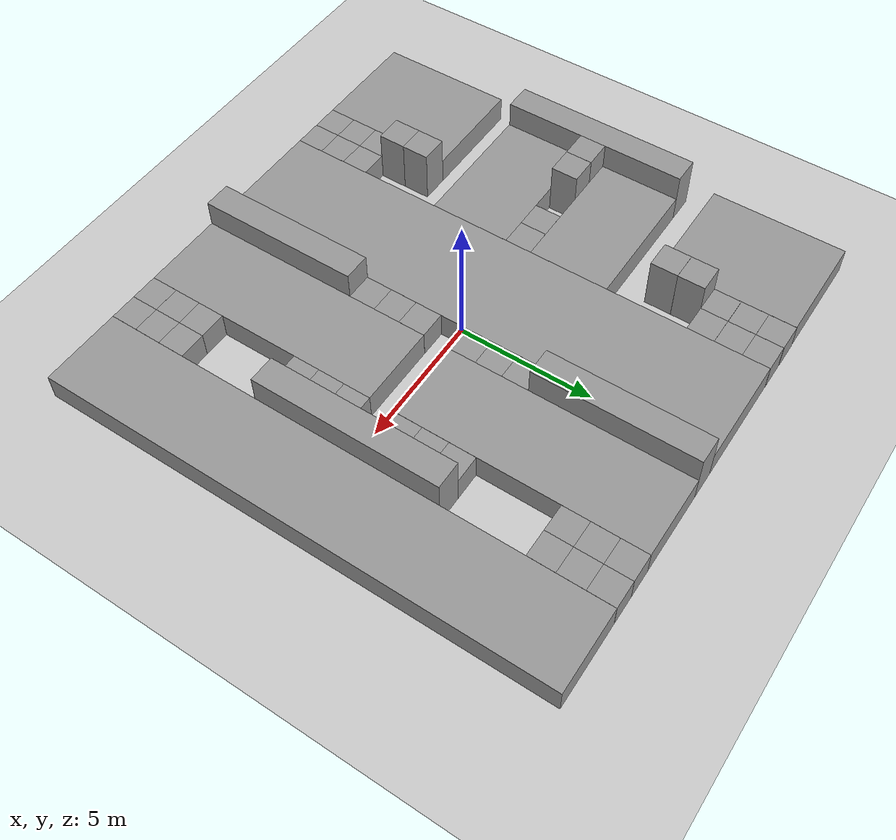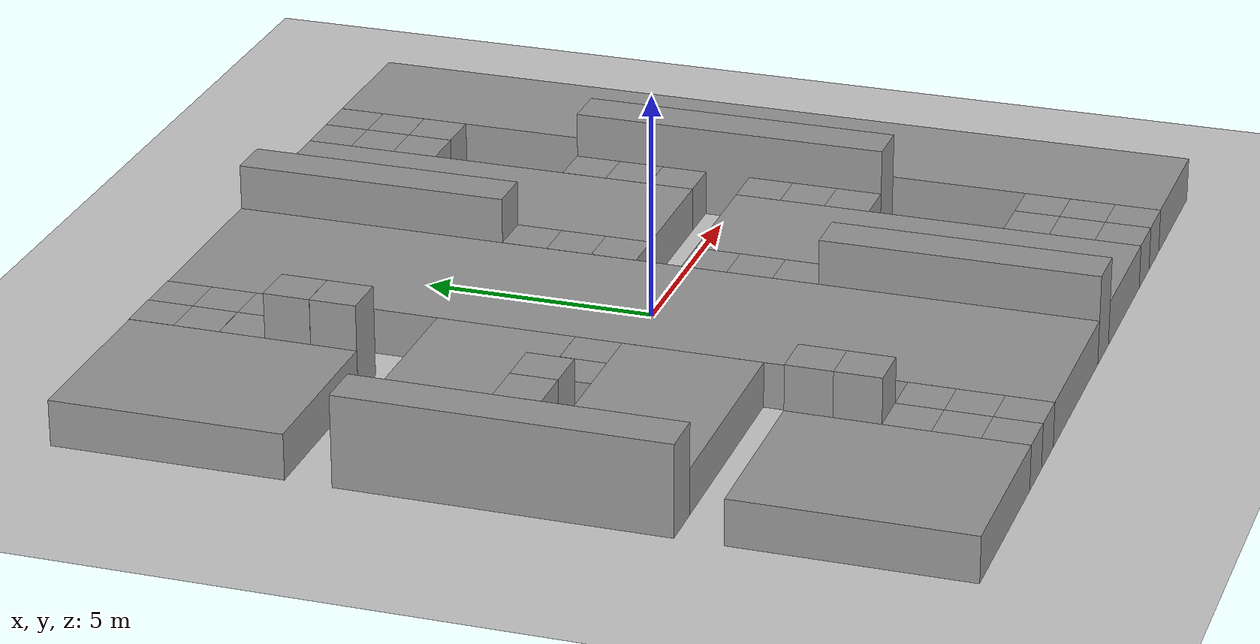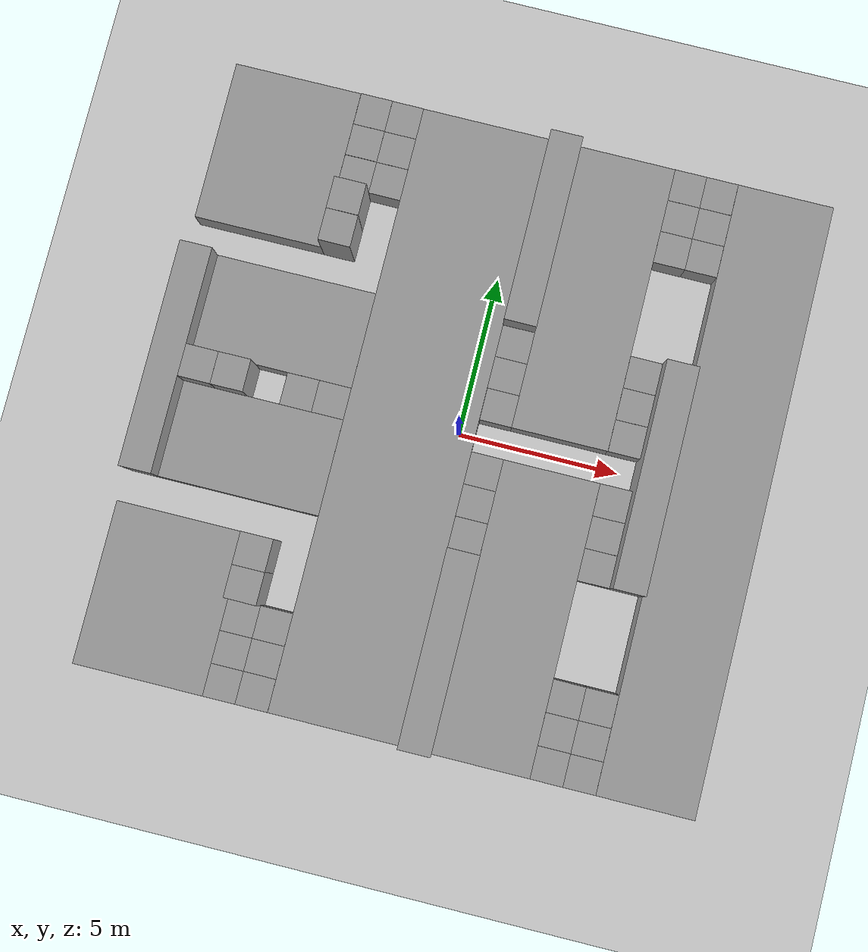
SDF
<sdf version="1.4">
 <world name="default">
  <light name="sun" type="directional">
   <pose>0 0 30 0 -0 0</pose>
   <diffuse>0.8 0.8 0.8 1</diffuse>
   <specular>0.2 0.2 0.2 1</specular>
   <attenuation>
    <range>1000</range>
    <constant>0.9</constant>
    <linear>0.01</linear>
    <quadratic>0.001</quadratic>
   </attenuation>
   <direction>-0.5 0.1 -0.9</direction>
  </light>
  <model name="ground_plane">
   <static>1</static>
   <link name="link">
    <collision name="collision">
     <geometry><plane><normal>0 0 1</normal><size>100 100</size></plane></geometry>
     <surface><friction><ode><mu>100</mu><mu2>50</mu2></ode></friction></surface>
    </collision>
    <visual name="visual">
     <cast_shadows>0</cast_shadows>
     <geometry><plane><normal>0 0 1</normal><size>100 100</size></plane></geometry>
     <material>
      <script><uri>file://media/materials/scripts/gazebo.material</uri><name>Gazebo/Grey</name></script>
     </material>
    </visual>
    <velocity_decay><linear>0</linear><angular>0</angular></velocity_decay>
   </link>
  </model>
  <physics type="ode">
   <max_step_size>0.001</max_step_size>
   <real_time_factor>1</real_time_factor>
   <real_time_update_rate>1000</real_time_update_rate>
   <gravity>0 0 -9.8</gravity>
  </physics>
  <scene><ambient>0.4 0.4 0.4 1</ambient><background>0.7 0.7 0.7 1</background><shadows>1</shadows></scene>
  <spherical_coordinates>
   <surface_model>EARTH_WGS84</surface_model>
   <latitude_deg>0</latitude_deg>
   <longitude_deg>0</longitude_deg>
   <elevation>0</elevation>
   <heading_deg>0</heading_deg>
  </spherical_coordinates>
  <model name="unit_box_7">
   <pose>6.00106 -0.000185 1 0 0 -8.2e-05</pose>
   <link name="link">
    <inertial>
     <mass>0</mass>
     <inertia><ixx>0</ixx><ixy>0</ixy><ixz>0</ixz><iyy>0</iyy><iyz>0</iyz><izz>0</izz></inertia>
    </inertial>
    <collision name="collision"><geometry><box><size>1 7 2</size></box></geometry></collision>
    <visual name="visual">
     <geometry><box><size>1 7 2</size></box></geometry>
     <material>
      <script><uri>file://media/materials/scripts/gazebo.material</uri><name>Gazebo/Grey</name></script>
     </material>
    </visual>
    <velocity_decay><linear>0</linear><angular>0</angular></velocity_decay>
   </link>
   <static>1</static>
  </model>
  <model name="unit_box_9">
   <pose>8.00208 0.000273 0.5 0 0 -9.8e-05</pose>
   <link name="link">
    <inertial>
     <mass>0</mass>
     <inertia><ixx>0</ixx><ixy>0</ixy><ixz>0</ixz><iyy>0</iyy><iyz>0</iyz><izz>0</izz></inertia>
    </inertial>
    <collision name="collision"><geometry><box><size>3 19 1</size></box></geometry></collision>
    <visual name="visual">
     <geometry><box><size>3 19 1</size></box></geometry>
     <material>
      <script><uri>file://media/materials/scripts/gazebo.material</uri><name>Gazebo/Grey</name></script>
     </material>
    </visual>
    <velocity_decay><linear>0</linear><angular>0</angular></velocity_decay>
   </link>
   <static>1</static>
  </model>
  <model name="unit_box_12">
   <pose>-1.5 -1e-05 0.500001 -5.16988e-26 -2e-06 8.5e-05</pose>
   <link name="link">
    <inertial>
     <mass>0</mass>
     <inertia><ixx>0</ixx><ixy>0</ixy><ixz>0</ixz><iyy>0</iyy><iyz>0</iyz><izz>0</izz></inertia>
    </inertial>
    <collision name="collision"><geometry><box><size>4 19 1</size></box></geometry></collision>
    <visual name="visual">
     <geometry><box><size>4 19 1</size></box></geometry>
     <material>
      <script><uri>file://media/materials/scripts/gazebo.material</uri><name>Gazebo/Grey</name></script>
     </material>
    </visual>
    <velocity_decay><linear>0</linear><angular>0</angular></velocity_decay>
   </link>
   <static>1</static>
  </model>
  <model name="unit_box_15">
   <pose>-5.00042 -0.000441 0.5 0 -0 0.000129</pose>
   <link name="link">
    <inertial>
     <mass>0</mass>
     <inertia><ixx>0</ixx><ixy>0</ixy><ixz>0</ixz><iyy>0</iyy><iyz>0</iyz><izz>0</izz></inertia>
    </inertial>
    <collision name="collision"><geometry><box><size>1 1 1</size></box></geometry></collision>
    <visual name="visual">
     <geometry><box><size>1 1 1</size></box></geometry>
     <material>
      <script><uri>file://media/materials/scripts/gazebo.material</uri><name>Gazebo/Grey</name></script>
     </material>
    </visual>
    <velocity_decay><linear>0</linear><angular>0</angular></velocity_decay>
   </link>
   <static>1</static>
  </model>
  <model name="unit_box_17">
   <pose>-7.00529 -0.000662 1 0 -0 9e-05</pose>
   <link name="link">
    <inertial>
     <mass>0</mass>
     <inertia><ixx>0</ixx><ixy>0</ixy><ixz>0</ixz><iyy>0</iyy><iyz>0</iyz><izz>0</izz></inertia>
    </inertial>
    <collision name="collision"><geometry><box><size>1 1 2</size></box></geometry></collision>
    <visual name="visual">
     <geometry><box><size>1 1 2</size></box></geometry>
     <material>
      <script><uri>file://media/materials/scripts/gazebo.material</uri><name>Gazebo/Grey</name></script>
     </material>
    </visual>
    <velocity_decay><linear>0</linear><angular>0</angular></velocity_decay>
   </link>
   <static>1</static>
  </model>
  <model name="unit_box_18">
   <pose>-8.00606 -0.000851 1 0 -0 3.8e-05</pose>
   <link name="link">
    <inertial>
     <mass>0</mass>
     <inertia><ixx>0</ixx><ixy>0</ixy><ixz>0</ixz><iyy>0</iyy><iyz>0</iyz><izz>0</izz></inertia>
    </inertial>
    <collision name="collision"><geometry><box><size>1 1 2</size></box></geometry></collision>
    <visual name="visual">
     <geometry><box><size>1 1 2</size></box></geometry>
     <material>
      <script><uri>file://media/materials/scripts/gazebo.material</uri><name>Gazebo/Grey</name></script>
     </material>
    </visual>
    <velocity_decay><linear>0</linear><angular>0</angular></velocity_decay>
   </link>
   <static>1</static>
  </model>
  <model name="unit_box_19">
   <pose>-9.00622 -0.002069 1 0 0 -5.3e-05</pose>
   <link name="link">
    <inertial>
     <mass>0</mass>
     <inertia><ixx>0</ixx><ixy>0</ixy><ixz>0</ixz><iyy>0</iyy><iyz>0</iyz><izz>0</izz></inertia>
    </inertial>
    <collision name="collision"><geometry><box><size>1 7 2</size></box></geometry></collision>
    <visual name="visual">
     <geometry><box><size>1 7 2</size></box></geometry>
     <material>
      <script><uri>file://media/materials/scripts/gazebo.material</uri><name>Gazebo/Grey</name></script>
     </material>
    </visual>
    <velocity_decay><linear>0</linear><angular>0</angular></velocity_decay>
   </link>
   <static>1</static>
  </model>
  <model name="unit_box_42">
   <pose>5.00005 -9.00028 0.500001 -1e-06 -0 -1.5e-05</pose>
   <link name="link">
    <inertial>
     <mass>0</mass>
     <inertia><ixx>0</ixx><ixy>0</ixy><ixz>0</ixz><iyy>0</iyy><iyz>0</iyz><izz>0</izz></inertia>
    </inertial>
    <collision name="collision"><geometry><box><size>1 1 1</size></box></geometry></collision>
    <visual name="visual">
     <geometry><box><size>1 1 1</size></box></geometry>
     <material>
      <script><uri>file://media/materials/scripts/gazebo.material</uri><name>Gazebo/Grey</name></script>
     </material>
    </visual>
    <velocity_decay><linear>0</linear><angular>0</angular></velocity_decay>
   </link>
   <static>1</static>
  </model>
  <model name="unit_box_43">
   <pose>6.00005 -9.00024 0.5 0 0 -1.5e-05</pose>
   <link name="link">
    <inertial>
     <mass>0</mass>
     <inertia><ixx>0</ixx><ixy>0</ixy><ixz>0</ixz><iyy>0</iyy><iyz>0</iyz><izz>0</izz></inertia>
    </inertial>
    <collision name="collision"><geometry><box><size>1 1 1</size></box></geometry></collision>
    <visual name="visual">
     <geometry><box><size>1 1 1</size></box></geometry>
     <material>
      <script><uri>file://media/materials/scripts/gazebo.material</uri><name>Gazebo/Grey</name></script>
     </material>
    </visual>
    <velocity_decay><linear>0</linear><angular>0</angular></velocity_decay>
   </link>
   <static>1</static>
  </model>
  <model name="unit_box_58">
   <pose>-3.99937 9.00633 0.5 0 0 -0.001119</pose>
   <link name="link">
    <inertial>
     <mass>0</mass>
     <inertia><ixx>0</ixx><ixy>0</ixy><ixz>0</ixz><iyy>0</iyy><iyz>0</iyz><izz>0</izz></inertia>
    </inertial>
    <collision name="collision"><geometry><box><size>1 1 1</size></box></geometry></collision>
    <visual name="visual">
     <geometry><box><size>1 1 1</size></box></geometry>
     <material>
      <script><uri>file://media/materials/scripts/gazebo.material</uri><name>Gazebo/Grey</name></script>
     </material>
    </visual>
    <velocity_decay><linear>0</linear><angular>0</angular></velocity_decay>
   </link>
   <static>1</static>
  </model>
  <model name="unit_box_59">
   <pose>-4.99984 9.01408 0.5 0 0 -0.001025</pose>
   <link name="link">
    <inertial>
     <mass>0</mass>
     <inertia><ixx>0</ixx><ixy>0</ixy><ixz>0</ixz><iyy>0</iyy><iyz>0</iyz><izz>0</izz></inertia>
    </inertial>
    <collision name="collision"><geometry><box><size>1 1 1</size></box></geometry></collision>
    <visual name="visual">
     <geometry><box><size>1 1 1</size></box></geometry>
     <material>
      <script><uri>file://media/materials/scripts/gazebo.material</uri><name>Gazebo/Grey</name></script>
     </material>
    </visual>
    <velocity_decay><linear>0</linear><angular>0</angular></velocity_decay>
   </link>
   <static>1</static>
  </model>
  <model name="unit_box_83">
   <pose>6.00121 9.00111 0.5 0 0 -0.00015</pose>
   <link name="link">
    <inertial>
     <mass>0</mass>
     <inertia><ixx>0</ixx><ixy>0</ixy><ixz>0</ixz><iyy>0</iyy><iyz>0</iyz><izz>0</izz></inertia>
    </inertial>
    <collision name="collision"><geometry><box><size>1 1 1</size></box></geometry></collision>
    <visual name="visual">
     <geometry><box><size>1 1 1</size></box></geometry>
     <material>
      <script><uri>file://media/materials/scripts/gazebo.material</uri><name>Gazebo/Grey</name></script>
     </material>
    </visual>
    <velocity_decay><linear>0</linear><angular>0</angular></velocity_decay>
   </link>
   <static>1</static>
  </model>
  <model name="unit_box_84">
   <pose>5.00121 9.00167 0.5 0 0 -0.000139</pose>
   <link name="link">
    <inertial>
     <mass>0</mass>
     <inertia><ixx>0</ixx><ixy>0</ixy><ixz>0</ixz><iyy>0</iyy><iyz>0</iyz><izz>0</izz></inertia>
    </inertial>
    <collision name="collision"><geometry><box><size>1 1 1</size></box></geometry></collision>
    <visual name="visual">
     <geometry><box><size>1 1 1</size></box></geometry>
     <material>
      <script><uri>file://media/materials/scripts/gazebo.material</uri><name>Gazebo/Grey</name></script>
     </material>
    </visual>
    <velocity_decay><linear>0</linear><angular>0</angular></velocity_decay>
   </link>
   <static>1</static>
  </model>
  <model name="unit_box_100">
   <pose>-4.00005 -9.00042 0.5 0 -0 1.2e-05</pose>
   <link name="link">
    <inertial>
     <mass>0</mass>
     <inertia><ixx>0</ixx><ixy>0</ixy><ixz>0</ixz><iyy>0</iyy><iyz>0</iyz><izz>0</izz></inertia>
    </inertial>
    <collision name="collision"><geometry><box><size>1 1 1</size></box></geometry></collision>
    <visual name="visual">
     <geometry><box><size>1 1 1</size></box></geometry>
     <material>
      <script><uri>file://media/materials/scripts/gazebo.material</uri><name>Gazebo/Grey</name></script>
     </material>
    </visual>
    <velocity_decay><linear>0</linear><angular>0</angular></velocity_decay>
   </link>
   <static>1</static>
  </model>
  <model name="unit_box_101">
   <pose>-5.00005 -9.00052 0.5 0 -0 2.7e-05</pose>
   <link name="link">
    <inertial>
     <mass>0</mass>
     <inertia><ixx>0</ixx><ixy>0</ixy><ixz>0</ixz><iyy>0</iyy><iyz>0</iyz><izz>0</izz></inertia>
    </inertial>
    <collision name="collision"><geometry><box><size>1 1 1</size></box></geometry></collision>
    <visual name="visual">
     <geometry><box><size>1 1 1</size></box></geometry>
     <material>
      <script><uri>file://media/materials/scripts/gazebo.material</uri><name>Gazebo/Grey</name></script>
     </material>
    </visual>
    <velocity_decay><linear>0</linear><angular>0</angular></velocity_decay>
   </link>
   <static>1</static>
  </model>
  <model name="unit_box_107">
   <pose>1.00002 -6.50087 1 0 -0 1.2e-05</pose>
   <link name="link">
    <inertial>
     <mass>0</mass>
     <inertia><ixx>0</ixx><ixy>0</ixy><ixz>0</ixz><iyy>0</iyy><iyz>0</iyz><izz>0</izz></inertia>
    </inertial>
    <collision name="collision"><geometry><box><size>1 6 2</size></box></geometry></collision>
    <visual name="visual">
     <geometry><box><size>1 6 2</size></box></geometry>
     <material>
      <script><uri>file://media/materials/scripts/gazebo.material</uri><name>Gazebo/Grey</name></script>
     </material>
    </visual>
    <velocity_decay><linear>0</linear><angular>0</angular></velocity_decay>
   </link>
   <static>1</static>
  </model>
  <model name="unit_box_111">
   <pose>1.00007 -3.00083 0.5 0 0 -7e-06</pose>
   <link name="link">
    <inertial>
     <mass>0</mass>
     <inertia><ixx>0</ixx><ixy>0</ixy><ixz>0</ixz><iyy>0</iyy><iyz>0</iyz><izz>0</izz></inertia>
    </inertial>
    <collision name="collision"><geometry><box><size>1 1 1</size></box></geometry></collision>
    <visual name="visual">
     <geometry><box><size>1 1 1</size></box></geometry>
     <material>
      <script><uri>file://media/materials/scripts/gazebo.material</uri><name>Gazebo/Grey</name></script>
     </material>
    </visual>
    <velocity_decay><linear>0</linear><angular>0</angular></velocity_decay>
   </link>
   <static>1</static>
  </model>
  <model name="unit_box_112">
   <pose>1.00008 -2.00083 0.5 0 0 -7e-06</pose>
   <link name="link">
    <inertial>
     <mass>0</mass>
     <inertia><ixx>0</ixx><ixy>0</ixy><ixz>0</ixz><iyy>0</iyy><iyz>0</iyz><izz>0</izz></inertia>
    </inertial>
    <collision name="collision"><geometry><box><size>1 1 1</size></box></geometry></collision>
    <visual name="visual">
     <geometry><box><size>1 1 1</size></box></geometry>
     <material>
      <script><uri>file://media/materials/scripts/gazebo.material</uri><name>Gazebo/Grey</name></script>
     </material>
    </visual>
    <velocity_decay><linear>0</linear><angular>0</angular></velocity_decay>
   </link>
   <static>1</static>
  </model>
  <model name="unit_box_113">
   <pose>1.00002 -1.00077 0.5 0 -0 0.000106</pose>
   <link name="link">
    <inertial>
     <mass>0</mass>
     <inertia><ixx>0</ixx><ixy>0</ixy><ixz>0</ixz><iyy>0</iyy><iyz>0</iyz><izz>0</izz></inertia>
    </inertial>
    <collision name="collision"><geometry><box><size>1 1 1</size></box></geometry></collision>
    <visual name="visual">
     <geometry><box><size>1 1 1</size></box></geometry>
     <material>
      <script><uri>file://media/materials/scripts/gazebo.material</uri><name>Gazebo/Grey</name></script>
     </material>
    </visual>
    <velocity_decay><linear>0</linear><angular>0</angular></velocity_decay>
   </link>
   <static>1</static>
  </model>
  <model name="unit_box_125">
   <pose>3.00005 -5.00114 0.499996 -3e-06 4e-06 -4.1e-05</pose>
   <link name="link">
    <inertial>
     <mass>0</mass>
     <inertia><ixx>0</ixx><ixy>0</ixy><ixz>0</ixz><iyy>0</iyy><iyz>0</iyz><izz>0</izz></inertia>
    </inertial>
    <collision name="collision"><geometry><box><size>3 9 1</size></box></geometry></collision>
    <visual name="visual">
     <geometry><box><size>3 9 1</size></box></geometry>
     <material>
      <script><uri>file://media/materials/scripts/gazebo.material</uri><name>Gazebo/Grey</name></script>
     </material>
    </visual>
    <velocity_decay><linear>0</linear><angular>0</angular></velocity_decay>
   </link>
   <static>1</static>
  </model>
  <model name="unit_box_138">
   <pose>5.00008 -8.00019 0.5 0 0 -5.8e-05</pose>
   <link name="link">
    <inertial>
     <mass>0</mass>
     <inertia><ixx>0</ixx><ixy>0</ixy><ixz>0</ixz><iyy>0</iyy><iyz>0</iyz><izz>0</izz></inertia>
    </inertial>
    <collision name="collision"><geometry><box><size>1 1 1</size></box></geometry></collision>
    <visual name="visual">
     <geometry><box><size>1 1 1</size></box></geometry>
     <material>
      <script><uri>file://media/materials/scripts/gazebo.material</uri><name>Gazebo/Grey</name></script>
     </material>
    </visual>
    <velocity_decay><linear>0</linear><angular>0</angular></velocity_decay>
   </link>
   <static>1</static>
  </model>
  <model name="unit_box_139">
   <pose>5.0001 -7.00017 0.5 0 0 -5.7e-05</pose>
   <link name="link">
    <inertial>
     <mass>0</mass>
     <inertia><ixx>0</ixx><ixy>0</ixy><ixz>0</ixz><iyy>0</iyy><iyz>0</iyz><izz>0</izz></inertia>
    </inertial>
    <collision name="collision"><geometry><box><size>1 1 1</size></box></geometry></collision>
    <visual name="visual">
     <geometry><box><size>1 1 1</size></box></geometry>
     <material>
      <script><uri>file://media/materials/scripts/gazebo.material</uri><name>Gazebo/Grey</name></script>
     </material>
    </visual>
    <velocity_decay><linear>0</linear><angular>0</angular></velocity_decay>
   </link>
   <static>1</static>
  </model>
  <model name="unit_box_143">
   <pose>5.00014 -3.00012 0.5 0 0 -8.8e-05</pose>
   <link name="link">
    <inertial>
     <mass>0</mass>
     <inertia><ixx>0</ixx><ixy>0</ixy><ixz>0</ixz><iyy>0</iyy><iyz>0</iyz><izz>0</izz></inertia>
    </inertial>
    <collision name="collision"><geometry><box><size>1 1 1</size></box></geometry></collision>
    <visual name="visual">
     <geometry><box><size>1 1 1</size></box></geometry>
     <material>
      <script><uri>file://media/materials/scripts/gazebo.material</uri><name>Gazebo/Grey</name></script>
     </material>
    </visual>
    <velocity_decay><linear>0</linear><angular>0</angular></velocity_decay>
   </link>
   <static>1</static>
  </model>
  <model name="unit_box_144">
   <pose>5.00033 -2.0001 0.5 0 0 -8.6e-05</pose>
   <link name="link">
    <inertial>
     <mass>0</mass>
     <inertia><ixx>0</ixx><ixy>0</ixy><ixz>0</ixz><iyy>0</iyy><iyz>0</iyz><izz>0</izz></inertia>
    </inertial>
    <collision name="collision"><geometry><box><size>1 1 1</size></box></geometry></collision>
    <visual name="visual">
     <geometry><box><size>1 1 1</size></box></geometry>
     <material>
      <script><uri>file://media/materials/scripts/gazebo.material</uri><name>Gazebo/Grey</name></script>
     </material>
    </visual>
    <velocity_decay><linear>0</linear><angular>0</angular></velocity_decay>
   </link>
   <static>1</static>
  </model>
  <model name="unit_box_145">
   <pose>5.00054 -1.0001 0.5 0 0 -8.6e-05</pose>
   <link name="link">
    <inertial>
     <mass>0</mass>
     <inertia><ixx>0</ixx><ixy>0</ixy><ixz>0</ixz><iyy>0</iyy><iyz>0</iyz><izz>0</izz></inertia>
    </inertial>
    <collision name="collision"><geometry><box><size>1 1 1</size></box></geometry></collision>
    <visual name="visual">
     <geometry><box><size>1 1 1</size></box></geometry>
     <material>
      <script><uri>file://media/materials/scripts/gazebo.material</uri><name>Gazebo/Grey</name></script>
     </material>
    </visual>
    <velocity_decay><linear>0</linear><angular>0</angular></velocity_decay>
   </link>
   <static>1</static>
  </model>
  <model name="unit_box_146">
   <pose>6.00008 -8.00021 0.5 0 0 -5.8e-05</pose>
   <link name="link">
    <inertial>
     <mass>0</mass>
     <inertia><ixx>0</ixx><ixy>0</ixy><ixz>0</ixz><iyy>0</iyy><iyz>0</iyz><izz>0</izz></inertia>
    </inertial>
    <collision name="collision"><geometry><box><size>1 1 1</size></box></geometry></collision>
    <visual name="visual">
     <geometry><box><size>1 1 1</size></box></geometry>
     <material>
      <script><uri>file://media/materials/scripts/gazebo.material</uri><name>Gazebo/Grey</name></script>
     </material>
    </visual>
    <velocity_decay><linear>0</linear><angular>0</angular></velocity_decay>
   </link>
   <static>1</static>
  </model>
  <model name="unit_box_147">
   <pose>6.00012 -7.00021 0.5 0 0 -5.8e-05</pose>
   <link name="link">
    <inertial>
     <mass>0</mass>
     <inertia><ixx>0</ixx><ixy>0</ixy><ixz>0</ixz><iyy>0</iyy><iyz>0</iyz><izz>0</izz></inertia>
    </inertial>
    <collision name="collision"><geometry><box><size>1 1 1</size></box></geometry></collision>
    <visual name="visual">
     <geometry><box><size>1 1 1</size></box></geometry>
     <material>
      <script><uri>file://media/materials/scripts/gazebo.material</uri><name>Gazebo/Grey</name></script>
     </material>
    </visual>
    <velocity_decay><linear>0</linear><angular>0</angular></velocity_decay>
   </link>
   <static>1</static>
  </model>
  <model name="unit_box_172">
   <pose>1.00217 2.00031 0.5 0 0 -0.000192</pose>
   <link name="link">
    <inertial>
     <mass>0</mass>
     <inertia><ixx>0</ixx><ixy>0</ixy><ixz>0</ixz><iyy>0</iyy><iyz>0</iyz><izz>0</izz></inertia>
    </inertial>
    <collision name="collision"><geometry><box><size>1 1 1</size></box></geometry></collision>
    <visual name="visual">
     <geometry><box><size>1 1 1</size></box></geometry>
     <material>
      <script><uri>file://media/materials/scripts/gazebo.material</uri><name>Gazebo/Grey</name></script>
     </material>
    </visual>
    <velocity_decay><linear>0</linear><angular>0</angular></velocity_decay>
   </link>
   <static>1</static>
  </model>
  <model name="unit_box_173">
   <pose>1.00175 3.0004 0.5 0 0 -0.000169</pose>
   <link name="link">
    <inertial>
     <mass>0</mass>
     <inertia><ixx>0</ixx><ixy>0</ixy><ixz>0</ixz><iyy>0</iyy><iyz>0</iyz><izz>0</izz></inertia>
    </inertial>
    <collision name="collision"><geometry><box><size>1 1 1</size></box></geometry></collision>
    <visual name="visual">
     <geometry><box><size>1 1 1</size></box></geometry>
     <material>
      <script><uri>file://media/materials/scripts/gazebo.material</uri><name>Gazebo/Grey</name></script>
     </material>
    </visual>
    <velocity_decay><linear>0</linear><angular>0</angular></velocity_decay>
   </link>
   <static>1</static>
  </model>
  <model name="unit_box_177">
   <pose>1.00129 6.5 1 0 0 -0.000289</pose>
   <link name="link">
    <inertial>
     <mass>0</mass>
     <inertia><ixx>0</ixx><ixy>0</ixy><ixz>0</ixz><iyy>0</iyy><iyz>0</iyz><izz>0</izz></inertia>
    </inertial>
    <collision name="collision"><geometry><box><size>1 6 2</size></box></geometry></collision>
    <visual name="visual">
     <geometry><box><size>1 6 2</size></box></geometry>
     <material>
      <script><uri>file://media/materials/scripts/gazebo.material</uri><name>Gazebo/Grey</name></script>
     </material>
    </visual>
    <velocity_decay><linear>0</linear><angular>0</angular></velocity_decay>
   </link>
   <static>1</static>
  </model>
  <model name="unit_box_199">
   <pose>3.00101 5.00047 0.5 0 0 -0.000156</pose>
   <link name="link">
    <inertial>
     <mass>0</mass>
     <inertia><ixx>0</ixx><ixy>0</ixy><ixz>0</ixz><iyy>0</iyy><iyz>0</iyz><izz>0</izz></inertia>
    </inertial>
    <collision name="collision"><geometry><box><size>3 9 1</size></box></geometry></collision>
    <visual name="visual">
     <geometry><box><size>3 9 1</size></box></geometry>
     <material>
      <script><uri>file://media/materials/scripts/gazebo.material</uri><name>Gazebo/Grey</name></script>
     </material>
    </visual>
    <velocity_decay><linear>0</linear><angular>0</angular></velocity_decay>
   </link>
   <static>1</static>
  </model>
  <model name="unit_box_211">
   <pose>5.00217 0.999968 0.5 0 0 -0.000134</pose>
   <link name="link">
    <inertial>
     <mass>0</mass>
     <inertia><ixx>0</ixx><ixy>0</ixy><ixz>0</ixz><iyy>0</iyy><iyz>0</iyz><izz>0</izz></inertia>
    </inertial>
    <collision name="collision"><geometry><box><size>1 1 1</size></box></geometry></collision>
    <visual name="visual">
     <geometry><box><size>1 1 1</size></box></geometry>
     <material>
      <script><uri>file://media/materials/scripts/gazebo.material</uri><name>Gazebo/Grey</name></script>
     </material>
    </visual>
    <velocity_decay><linear>0</linear><angular>0</angular></velocity_decay>
   </link>
   <static>1</static>
  </model>
  <model name="unit_box_212">
   <pose>5.00222 2.00024 0.5 0 0 -0.000149</pose>
   <link name="link">
    <inertial>
     <mass>0</mass>
     <inertia><ixx>0</ixx><ixy>0</ixy><ixz>0</ixz><iyy>0</iyy><iyz>0</iyz><izz>0</izz></inertia>
    </inertial>
    <collision name="collision"><geometry><box><size>1 1 1</size></box></geometry></collision>
    <visual name="visual">
     <geometry><box><size>1 1 1</size></box></geometry>
     <material>
      <script><uri>file://media/materials/scripts/gazebo.material</uri><name>Gazebo/Grey</name></script>
     </material>
    </visual>
    <velocity_decay><linear>0</linear><angular>0</angular></velocity_decay>
   </link>
   <static>1</static>
  </model>
  <model name="unit_box_213">
   <pose>5.00208 3.00045 0.5 0 0 -0.000118</pose>
   <link name="link">
    <inertial>
     <mass>0</mass>
     <inertia><ixx>0</ixx><ixy>0</ixy><ixz>0</ixz><iyy>0</iyy><iyz>0</iyz><izz>0</izz></inertia>
    </inertial>
    <collision name="collision"><geometry><box><size>1 1 1</size></box></geometry></collision>
    <visual name="visual">
     <geometry><box><size>1 1 1</size></box></geometry>
     <material>
      <script><uri>file://media/materials/scripts/gazebo.material</uri><name>Gazebo/Grey</name></script>
     </material>
    </visual>
    <velocity_decay><linear>0</linear><angular>0</angular></velocity_decay>
   </link>
   <static>1</static>
  </model>
  <model name="unit_box_217">
   <pose>5.0017 7.00105 0.5 0 0 -0.000167</pose>
   <link name="link">
    <inertial>
     <mass>0</mass>
     <inertia><ixx>0</ixx><ixy>0</ixy><ixz>0</ixz><iyy>0</iyy><iyz>0</iyz><izz>0</izz></inertia>
    </inertial>
    <collision name="collision"><geometry><box><size>1 1 1</size></box></geometry></collision>
    <visual name="visual">
     <geometry><box><size>1 1 1</size></box></geometry>
     <material>
      <script><uri>file://media/materials/scripts/gazebo.material</uri><name>Gazebo/Grey</name></script>
     </material>
    </visual>
    <velocity_decay><linear>0</linear><angular>0</angular></velocity_decay>
   </link>
   <static>1</static>
  </model>
  <model name="unit_box_218">
   <pose>5.00187 8.00108 0.5 0 0 -0.000182</pose>
   <link name="link">
    <inertial>
     <mass>0</mass>
     <inertia><ixx>0</ixx><ixy>0</ixy><ixz>0</ixz><iyy>0</iyy><iyz>0</iyz><izz>0</izz></inertia>
    </inertial>
    <collision name="collision"><geometry><box><size>1 1 1</size></box></geometry></collision>
    <visual name="visual">
     <geometry><box><size>1 1 1</size></box></geometry>
     <material>
      <script><uri>file://media/materials/scripts/gazebo.material</uri><name>Gazebo/Grey</name></script>
     </material>
    </visual>
    <velocity_decay><linear>0</linear><angular>0</angular></velocity_decay>
   </link>
   <static>1</static>
  </model>
  <model name="unit_box_225">
   <pose>6.00172 7.00074 0.5 0 0 -0.000147</pose>
   <link name="link">
    <inertial>
     <mass>0</mass>
     <inertia><ixx>0</ixx><ixy>0</ixy><ixz>0</ixz><iyy>0</iyy><iyz>0</iyz><izz>0</izz></inertia>
    </inertial>
    <collision name="collision"><geometry><box><size>1 1 1</size></box></geometry></collision>
    <visual name="visual">
     <geometry><box><size>1 1 1</size></box></geometry>
     <material>
      <script><uri>file://media/materials/scripts/gazebo.material</uri><name>Gazebo/Grey</name></script>
     </material>
    </visual>
    <velocity_decay><linear>0</linear><angular>0</angular></velocity_decay>
   </link>
   <static>1</static>
  </model>
  <model name="unit_box_226">
   <pose>6.00189 8.00086 0.5 0 0 -0.000197</pose>
   <link name="link">
    <inertial>
     <mass>0</mass>
     <inertia><ixx>0</ixx><ixy>0</ixy><ixz>0</ixz><iyy>0</iyy><iyz>0</iyz><izz>0</izz></inertia>
    </inertial>
    <collision name="collision"><geometry><box><size>1 1 1</size></box></geometry></collision>
    <visual name="visual">
     <geometry><box><size>1 1 1</size></box></geometry>
     <material>
      <script><uri>file://media/materials/scripts/gazebo.material</uri><name>Gazebo/Grey</name></script>
     </material>
    </visual>
    <velocity_decay><linear>0</linear><angular>0</angular></velocity_decay>
   </link>
   <static>1</static>
  </model>
  <model name="unit_box_30_0">
   <pose>-4.00034 -0.00036 0.5 0 -0 8.4e-05</pose>
   <link name="link">
    <inertial>
     <mass>0</mass>
     <inertia><ixx>0</ixx><ixy>0</ixy><ixz>0</ixz><iyy>0</iyy><iyz>0</iyz><izz>0</izz></inertia>
    </inertial>
    <collision name="collision"><geometry><box><size>1 1 1</size></box></geometry></collision>
    <visual name="visual">
     <geometry><box><size>1 1 1</size></box></geometry>
     <material>
      <script><uri>file://media/materials/scripts/gazebo.material</uri><name>Gazebo/Grey</name></script>
     </material>
    </visual>
    <velocity_decay><linear>0</linear><angular>0</angular></velocity_decay>
   </link>
   <static>1</static>
  </model>
  <model name="unit_box_37_0">
   <pose>-3.99972 7.00531 0.5 0 0 -0.001417</pose>
   <link name="link">
    <inertial>
     <mass>0</mass>
     <inertia><ixx>0</ixx><ixy>0</ixy><ixz>0</ixz><iyy>0</iyy><iyz>0</iyz><izz>0</izz></inertia>
    </inertial>
    <collision name="collision"><geometry><box><size>1 1 1</size></box></geometry></collision>
    <visual name="visual">
     <geometry><box><size>1 1 1</size></box></geometry>
     <material>
      <script><uri>file://media/materials/scripts/gazebo.material</uri><name>Gazebo/Grey</name></script>
     </material>
    </visual>
    <velocity_decay><linear>0</linear><angular>0</angular></velocity_decay>
   </link>
   <static>1</static>
  </model>
  <model name="unit_box_38_0">
   <pose>-3.99973 8.00616 0.5 0 0 -0.001464</pose>
   <link name="link">
    <inertial>
     <mass>0</mass>
     <inertia><ixx>0</ixx><ixy>0</ixy><ixz>0</ixz><iyy>0</iyy><iyz>0</iyz><izz>0</izz></inertia>
    </inertial>
    <collision name="collision"><geometry><box><size>1 1 1</size></box></geometry></collision>
    <visual name="visual">
     <geometry><box><size>1 1 1</size></box></geometry>
     <material>
      <script><uri>file://media/materials/scripts/gazebo.material</uri><name>Gazebo/Grey</name></script>
     </material>
    </visual>
    <velocity_decay><linear>0</linear><angular>0</angular></velocity_decay>
   </link>
   <static>1</static>
  </model>
  <model name="unit_box_46_0">
   <pose>-5.00036 5.00317 1 0 0 -0.001356</pose>
   <link name="link">
    <inertial>
     <mass>0</mass>
     <inertia><ixx>0</ixx><ixy>0</ixy><ixz>0</ixz><iyy>0</iyy><iyz>0</iyz><izz>0</izz></inertia>
    </inertial>
    <collision name="collision"><geometry><box><size>1 1 2</size></box></geometry></collision>
    <visual name="visual">
     <geometry><box><size>1 1 2</size></box></geometry>
     <material>
      <script><uri>file://media/materials/scripts/gazebo.material</uri><name>Gazebo/Grey</name></script>
     </material>
    </visual>
    <velocity_decay><linear>0</linear><angular>0</angular></velocity_decay>
   </link>
   <static>1</static>
  </model>
  <model name="unit_box_47_0">
   <pose>-4.99966 6.00626 1 0 0 -0.000678</pose>
   <link name="link">
    <inertial>
     <mass>0</mass>
     <inertia><ixx>0</ixx><ixy>0</ixy><ixz>0</ixz><iyy>0</iyy><iyz>0</iyz><izz>0</izz></inertia>
    </inertial>
    <collision name="collision"><geometry><box><size>1 1 2</size></box></geometry></collision>
    <visual name="visual">
     <geometry><box><size>1 1 2</size></box></geometry>
     <material>
      <script><uri>file://media/materials/scripts/gazebo.material</uri><name>Gazebo/Grey</name></script>
     </material>
    </visual>
    <velocity_decay><linear>0</linear><angular>0</angular></velocity_decay>
   </link>
   <static>1</static>
  </model>
  <model name="unit_box_48_0">
   <pose>-4.99973 7.00758 0.5 0 0 -0.001411</pose>
   <link name="link">
    <inertial>
     <mass>0</mass>
     <inertia><ixx>0</ixx><ixy>0</ixy><ixz>0</ixz><iyy>0</iyy><iyz>0</iyz><izz>0</izz></inertia>
    </inertial>
    <collision name="collision"><geometry><box><size>1 1 1</size></box></geometry></collision>
    <visual name="visual">
     <geometry><box><size>1 1 1</size></box></geometry>
     <material>
      <script><uri>file://media/materials/scripts/gazebo.material</uri><name>Gazebo/Grey</name></script>
     </material>
    </visual>
    <velocity_decay><linear>0</linear><angular>0</angular></velocity_decay>
   </link>
   <static>1</static>
  </model>
  <model name="unit_box_49_0">
   <pose>-5.00021 8.01357 0.5 0 0 -0.000509</pose>
   <link name="link">
    <inertial>
     <mass>0</mass>
     <inertia><ixx>0</ixx><ixy>0</ixy><ixz>0</ixz><iyy>0</iyy><iyz>0</iyz><izz>0</izz></inertia>
    </inertial>
    <collision name="collision"><geometry><box><size>1 1 1</size></box></geometry></collision>
    <visual name="visual">
     <geometry><box><size>1 1 1</size></box></geometry>
     <material>
      <script><uri>file://media/materials/scripts/gazebo.material</uri><name>Gazebo/Grey</name></script>
     </material>
    </visual>
    <velocity_decay><linear>0</linear><angular>0</angular></velocity_decay>
   </link>
   <static>1</static>
  </model>
  <model name="unit_box_67_0">
   <pose>-7.5 7.00066 0.5 0 -0 0.001552</pose>
   <link name="link">
    <inertial>
     <mass>0</mass>
     <inertia><ixx>0</ixx><ixy>0</ixy><ixz>0</ixz><iyy>0</iyy><iyz>0</iyz><izz>0</izz></inertia>
    </inertial>
    <collision name="collision"><geometry><box><size>4 5 1</size></box></geometry></collision>
    <visual name="visual">
     <geometry><box><size>4 5 1</size></box></geometry>
     <material>
      <script><uri>file://media/materials/scripts/gazebo.material</uri><name>Gazebo/Grey</name></script>
     </material>
    </visual>
    <velocity_decay><linear>0</linear><angular>0</angular></velocity_decay>
   </link>
   <static>1</static>
  </model>
  <model name="unit_box_77_0">
   <pose>-6.00023 2.00001 0.5 0 -0 5.8e-05</pose>
   <link name="link">
    <inertial>
     <mass>0</mass>
     <inertia><ixx>0</ixx><ixy>0</ixy><ixz>0</ixz><iyy>0</iyy><iyz>0</iyz><izz>0</izz></inertia>
    </inertial>
    <collision name="collision"><geometry><box><size>5 3 1</size></box></geometry></collision>
    <visual name="visual">
     <geometry><box><size>5 3 1</size></box></geometry>
     <material>
      <script><uri>file://media/materials/scripts/gazebo.material</uri><name>Gazebo/Grey</name></script>
     </material>
    </visual>
    <velocity_decay><linear>0</linear><angular>0</angular></velocity_decay>
   </link>
   <static>1</static>
  </model>
  <model name="unit_box_99_0">
   <pose>-6.00016 -2.00002 0.5 0 -0 9.4e-05</pose>
   <link name="link">
    <inertial>
     <mass>0</mass>
     <inertia><ixx>0</ixx><ixy>0</ixy><ixz>0</ixz><iyy>0</iyy><iyz>0</iyz><izz>0</izz></inertia>
    </inertial>
    <collision name="collision"><geometry><box><size>5 3 1</size></box></geometry></collision>
    <visual name="visual">
     <geometry><box><size>5 3 1</size></box></geometry>
     <material>
      <script><uri>file://media/materials/scripts/gazebo.material</uri><name>Gazebo/Grey</name></script>
     </material>
    </visual>
    <velocity_decay><linear>0</linear><angular>0</angular></velocity_decay>
   </link>
   <static>1</static>
  </model>
  <model name="unit_box_118_0">
   <pose>-4 -7.00042 0.5 0 -0 1.3e-05</pose>
   <link name="link">
    <inertial>
     <mass>0</mass>
     <inertia><ixx>0</ixx><ixy>0</ixy><ixz>0</ixz><iyy>0</iyy><iyz>0</iyz><izz>0</izz></inertia>
    </inertial>
    <collision name="collision"><geometry><box><size>1 1 1</size></box></geometry></collision>
    <visual name="visual">
     <geometry><box><size>1 1 1</size></box></geometry>
     <material>
      <script><uri>file://media/materials/scripts/gazebo.material</uri><name>Gazebo/Grey</name></script>
     </material>
    </visual>
    <velocity_decay><linear>0</linear><angular>0</angular></velocity_decay>
   </link>
   <static>1</static>
  </model>
  <model name="unit_box_119_0">
   <pose>-3.99999 -8.00042 0.5 0 -0 1e-05</pose>
   <link name="link">
    <inertial>
     <mass>0</mass>
     <inertia><ixx>0</ixx><ixy>0</ixy><ixz>0</ixz><iyy>0</iyy><iyz>0</iyz><izz>0</izz></inertia>
    </inertial>
    <collision name="collision"><geometry><box><size>1 1 1</size></box></geometry></collision>
    <visual name="visual">
     <geometry><box><size>1 1 1</size></box></geometry>
     <material>
      <script><uri>file://media/materials/scripts/gazebo.material</uri><name>Gazebo/Grey</name></script>
     </material>
    </visual>
    <velocity_decay><linear>0</linear><angular>0</angular></velocity_decay>
   </link>
   <static>1</static>
  </model>
  <model name="unit_box_120_0">
   <pose>-5.00002 -6.00051 1 0 -0 2e-05</pose>
   <link name="link">
    <inertial>
     <mass>0</mass>
     <inertia><ixx>0</ixx><ixy>0</ixy><ixz>0</ixz><iyy>0</iyy><iyz>0</iyz><izz>0</izz></inertia>
    </inertial>
    <collision name="collision"><geometry><box><size>1 1 2</size></box></geometry></collision>
    <visual name="visual">
     <geometry><box><size>1 1 2</size></box></geometry>
     <material>
      <script><uri>file://media/materials/scripts/gazebo.material</uri><name>Gazebo/Grey</name></script>
     </material>
    </visual>
    <velocity_decay><linear>0</linear><angular>0</angular></velocity_decay>
   </link>
   <static>1</static>
  </model>
  <model name="unit_box_121_0">
   <pose>-5.00001 -7.00051 0.500002 1.29247e-26 -3e-06 2.3e-05</pose>
   <link name="link">
    <inertial>
     <mass>0</mass>
     <inertia><ixx>0</ixx><ixy>0</ixy><ixz>0</ixz><iyy>0</iyy><iyz>0</iyz><izz>0</izz></inertia>
    </inertial>
    <collision name="collision"><geometry><box><size>1 1 1</size></box></geometry></collision>
    <visual name="visual">
     <geometry><box><size>1 1 1</size></box></geometry>
     <material>
      <script><uri>file://media/materials/scripts/gazebo.material</uri><name>Gazebo/Grey</name></script>
     </material>
    </visual>
    <velocity_decay><linear>0</linear><angular>0</angular></velocity_decay>
   </link>
   <static>1</static>
  </model>
  <model name="unit_box_122_0">
   <pose>-5.00007 -8.00051 0.5 0 -0 2.5e-05</pose>
   <link name="link">
    <inertial>
     <mass>0</mass>
     <inertia><ixx>0</ixx><ixy>0</ixy><ixz>0</ixz><iyy>0</iyy><iyz>0</iyz><izz>0</izz></inertia>
    </inertial>
    <collision name="collision"><geometry><box><size>1 1 1</size></box></geometry></collision>
    <visual name="visual">
     <geometry><box><size>1 1 1</size></box></geometry>
     <material>
      <script><uri>file://media/materials/scripts/gazebo.material</uri><name>Gazebo/Grey</name></script>
     </material>
    </visual>
    <velocity_decay><linear>0</linear><angular>0</angular></velocity_decay>
   </link>
   <static>1</static>
  </model>
  <model name="unit_box_130_0">
   <pose>-7.5 -7.00107 0.499996 -3e-06 4e-06 3e-06</pose>
   <link name="link">
    <inertial>
     <mass>0</mass>
     <inertia><ixx>0</ixx><ixy>0</ixy><ixz>0</ixz><iyy>0</iyy><iyz>0</iyz><izz>0</izz></inertia>
    </inertial>
    <collision name="collision"><geometry><box><size>4 5 1</size></box></geometry></collision>
    <visual name="visual">
     <geometry><box><size>4 5 1</size></box></geometry>
     <material>
      <script><uri>file://media/materials/scripts/gazebo.material</uri><name>Gazebo/Grey</name></script>
     </material>
    </visual>
    <velocity_decay><linear>0</linear><angular>0</angular></velocity_decay>
   </link>
   <static>1</static>
  </model>
  <model name="unit_box_7_1">
   <pose>1.00202 0.999881 0.5 0 0 -0.000233</pose>
   <link name="link">
    <inertial>
     <mass>0</mass>
     <inertia><ixx>0</ixx><ixy>0</ixy><ixz>0</ixz><iyy>0</iyy><iyz>0</iyz><izz>0</izz></inertia>
    </inertial>
    <collision name="collision"><geometry><box><size>1 1 1</size></box></geometry></collision>
    <visual name="visual">
     <geometry><box><size>1 1 1</size></box></geometry>
     <material>
      <script><uri>file://media/materials/scripts/gazebo.material</uri><name>Gazebo/Grey</name></script>
     </material>
    </visual>
    <velocity_decay><linear>0</linear><angular>0</angular></velocity_decay>
   </link>
   <static>1</static>
  </model>
  <model name="unit_box_28_0">
   <pose>-5.00003 -5.00051 1 0 -0 1e-05</pose>
   <link name="link">
    <inertial>
     <mass>0</mass>
     <inertia><ixx>0</ixx><ixy>0</ixy><ixz>0</ixz><iyy>0</iyy><iyz>0</iyz><izz>0</izz></inertia>
    </inertial>
    <collision name="collision"><geometry><box><size>1 1 2</size></box></geometry></collision>
    <visual name="visual">
     <geometry><box><size>1 1 2</size></box></geometry>
     <material>
      <script><uri>file://media/materials/scripts/gazebo.material</uri><name>Gazebo/Grey</name></script>
     </material>
    </visual>
    <velocity_decay><linear>0</linear><angular>0</angular></velocity_decay>
   </link>
   <static>1</static>
  </model>
 </world>
</sdf>
